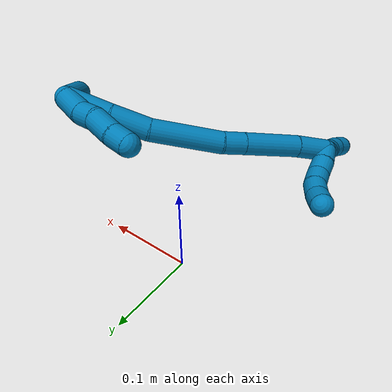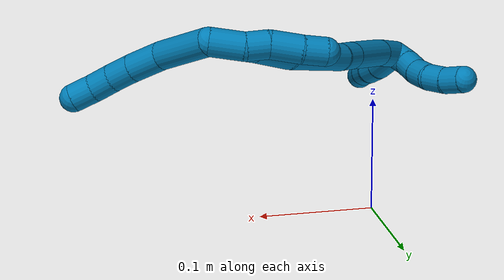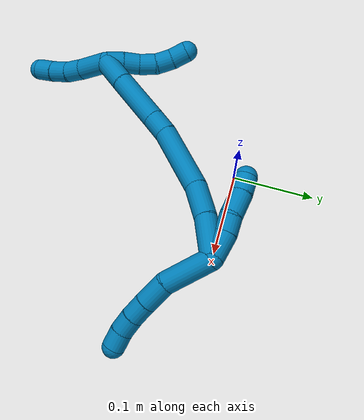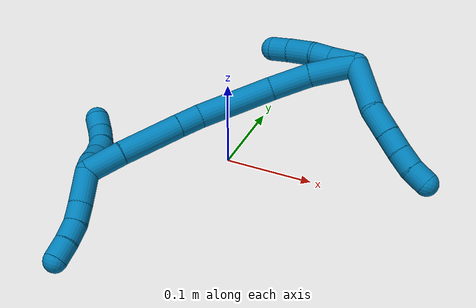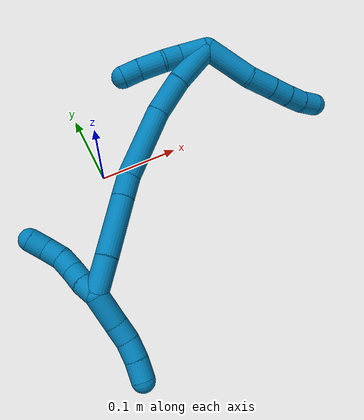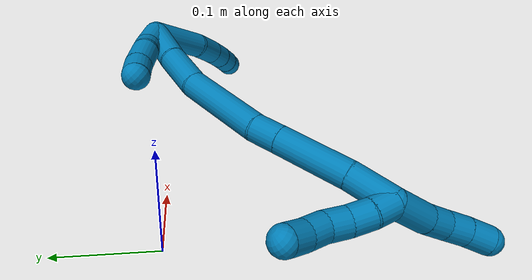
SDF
<sdf version="1.7">
 <world name="default">
  <model name="photoneo_s_sensor">
   <static>1</static>
   <pose>0 0 2 1.57079 1.57079 3.14159</pose>
   <link name="link">
    <inertial><mass>0.1</mass></inertial>
    <sensor name="sensor" type="depth">
     <update_rate>30</update_rate>
     <camera>
      <horizontal_fov>1.22</horizontal_fov>
      <image><width>1920</width><height>1200</height><format>B8G8R8</format></image>
      <clip><near>0.1</near><far>4</far></clip>
      <depth_camera><output>points</output></depth_camera>
     </camera>
     <plugin name="camera_plugin" filename="libgazebo_ros_depth_camera.so">
      <baseline>0.2</baseline>
      <alwaysOn>1</alwaysOn>
      <updateRate>0.0</updateRate>
      <cameraName>camera_ir</cameraName>
      <imageTopicName>/camera/color/image_raw</imageTopicName>
      <cameraInfoTopicName>/camera/color/camera_info</cameraInfoTopicName>
      <depthImageTopicName>/camera/depth/image_raw</depthImageTopicName>
      <depthImageCameraInfoTopicName>/camera/depth/camera_info</depthImageCameraInfoTopicName>
      <pointCloudTopicName>/camera/depth/points</pointCloudTopicName>
      <frameName>fr_optical</frameName>
      <pointCloudCutoff>0.1</pointCloudCutoff>
      <pointCloudCutoffMax>2.0</pointCloudCutoffMax>
      <distortionK1>0</distortionK1>
      <distortionK2>0</distortionK2>
      <distortionK3>0</distortionK3>
      <distortionT1>0</distortionT1>
      <distortionT2>0</distortionT2>
      <CxPrime>0</CxPrime>
      <Cx>0</Cx>
      <Cy>0</Cy>
      <focalLength>0</focalLength>
      <hackBaseline>0</hackBaseline>
     </plugin>
    </sensor>
   </link>
  </model>
  <model name="bin">
   <static>1</static>
   <link name="bottom">
    <collision name="collision-bottom">
     <pose>0 0 -0.01 0 -0 0</pose>
     <geometry><box><size>0.8 0.6 0.02</size></box></geometry>
     <surface>
      <friction><ode><mu>100</mu><mu2>100</mu2></ode></friction>
      <contact><collide_bitmask>65535</collide_bitmask></contact>
     </surface>
    </collision>
   </link>
   <link name="west_wall">
    <collision name="collision-west_wall">
     <pose>-0.41 0 0.1 0 -0 0</pose>
     <geometry><box><size>0.02 0.6 0.2</size></box></geometry>
     <surface>
      <friction><ode><mu>100</mu><mu2>100</mu2></ode></friction>
      <contact><collide_bitmask>65535</collide_bitmask></contact>
     </surface>
    </collision>
   </link>
   <link name="east_wall">
    <collision name="collision-east_wall">
     <pose>0.41 0 0.1 0 -0 0</pose>
     <geometry><box><size>0.02 0.6 0.2</size></box></geometry>
     <surface>
      <friction><ode><mu>100</mu><mu2>100</mu2></ode></friction>
      <contact><collide_bitmask>65535</collide_bitmask></contact>
     </surface>
    </collision>
   </link>
   <link name="south_wall">
    <collision name="collision-south_wall">
     <pose>0 -0.31 0.1 0 -0 0</pose>
     <geometry><box><size>0.8 0.02 0.2</size></box></geometry>
     <surface>
      <friction><ode><mu>100</mu><mu2>100</mu2></ode></friction>
      <contact><collide_bitmask>65535</collide_bitmask></contact>
     </surface>
    </collision>
   </link>
   <link name="north_wall">
    <collision name="collision-north_wall">
     <pose>0 0.31 0.1 0 -0 0</pose>
     <geometry><box><size>0.8 0.02 0.2</size></box></geometry>
     <surface>
      <friction><ode><mu>100</mu><mu2>100</mu2></ode></friction>
      <contact><collide_bitmask>65535</collide_bitmask></contact>
     </surface>
    </collision>
   </link>
  </model>
  <model name="9">
   <static>0</static>
   <link name="9">
    <collision name="collision-cylinder-e_1_2_8">
     <pose>0.013258 -0.012427 -0.021515 2.61781 0.49016 1.50157</pose>
     <geometry><cylinder><radius>0.0125</radius><length>0.056325</length></cylinder></geometry>
     <surface>
      <friction><ode><mu>1.16</mu><mu2>1.16</mu2><slip1>0</slip1><slip2>0</slip2></ode></friction>
      <contact><ode><kp>1e+06</kp><kd>1</kd><max_vel>0</max_vel><min_depth>0.001</min_depth></ode></contact>
     </surface>
    </collision>
    <visual name="visual-cylinder-e_1_2_8">
     <pose>0.013258 -0.012427 -0.021515 2.61781 0.49016 1.50157</pose>
     <geometry><cylinder><radius>0.0125</radius><length>0.056325</length></cylinder></geometry>
     <material><ambient>0 0.490196 0.709804 1</ambient></material>
    </visual>
    <collision name="collision-cylinder-e_2_8_9">
     <pose>0.037017 -0.029233 -0.053232 2.73619 0.7576 2.18829</pose>
     <geometry><cylinder><radius>0.0125</radius><length>0.030562</length></cylinder></geometry>
     <surface>
      <friction><ode><mu>1.16</mu><mu2>1.16</mu2><slip1>0</slip1><slip2>0</slip2></ode></friction>
      <contact><ode><kp>1e+06</kp><kd>1</kd><max_vel>0</max_vel><min_depth>0.001</min_depth></ode></contact>
     </surface>
    </collision>
    <visual name="visual-cylinder-e_2_8_9">
     <pose>0.037017 -0.029233 -0.053232 2.73619 0.7576 2.18829</pose>
     <geometry><cylinder><radius>0.0125</radius><length>0.030562</length></cylinder></geometry>
     <material><ambient>0 0.490196 0.709804 1</ambient></material>
    </visual>
    <collision name="collision-cylinder-e_3_9_10">
     <pose>0.055228 -0.036191 -0.070828 2.8059 0.777653 2.35726</pose>
     <geometry><cylinder><radius>0.0125</radius><length>0.02198</length></cylinder></geometry>
     <surface>
      <friction><ode><mu>1.16</mu><mu2>1.16</mu2><slip1>0</slip1><slip2>0</slip2></ode></friction>
      <contact><ode><kp>1e+06</kp><kd>1</kd><max_vel>0</max_vel><min_depth>0.001</min_depth></ode></contact>
     </surface>
    </collision>
    <visual name="visual-cylinder-e_3_9_10">
     <pose>0.055228 -0.036191 -0.070828 2.8059 0.777653 2.35726</pose>
     <geometry><cylinder><radius>0.0125</radius><length>0.02198</length></cylinder></geometry>
     <material><ambient>0 0.490196 0.709804 1</ambient></material>
    </visual>
    <collision name="collision-cylinder-e_4_10_11">
     <pose>0.070692 -0.040561 -0.084757 2.87417 0.852502 2.56561</pose>
     <geometry><cylinder><radius>0.0125</radius><length>0.020594</length></cylinder></geometry>
     <surface>
      <friction><ode><mu>1.16</mu><mu2>1.16</mu2><slip1>0</slip1><slip2>0</slip2></ode></friction>
      <contact><ode><kp>1e+06</kp><kd>1</kd><max_vel>0</max_vel><min_depth>0.001</min_depth></ode></contact>
     </surface>
    </collision>
    <visual name="visual-cylinder-e_4_10_11">
     <pose>0.070692 -0.040561 -0.084757 2.87417 0.852502 2.56561</pose>
     <geometry><cylinder><radius>0.0125</radius><length>0.020594</length></cylinder></geometry>
     <material><ambient>0 0.490196 0.709804 1</ambient></material>
    </visual>
    <collision name="collision-cylinder-e_5_11_6">
     <pose>0.087309 -0.043798 -0.096273 2.859 1.04149 2.65539</pose>
     <geometry><cylinder><radius>0.0125</radius><length>0.02054</length></cylinder></geometry>
     <surface>
      <friction><ode><mu>1.16</mu><mu2>1.16</mu2><slip1>0</slip1><slip2>0</slip2></ode></friction>
      <contact><ode><kp>1e+06</kp><kd>1</kd><max_vel>0</max_vel><min_depth>0.001</min_depth></ode></contact>
     </surface>
    </collision>
    <visual name="visual-cylinder-e_5_11_6">
     <pose>0.087309 -0.043798 -0.096273 2.859 1.04149 2.65539</pose>
     <geometry><cylinder><radius>0.0125</radius><length>0.02054</length></cylinder></geometry>
     <material><ambient>0 0.490196 0.709804 1</ambient></material>
    </visual>
    <collision name="collision-cylinder-e_1_2_12">
     <pose>-0.012859 0.008417 0.000618 -1.49746 -0.98999 0.929882</pose>
     <geometry><cylinder><radius>0.0125</radius><length>0.030762</length></cylinder></geometry>
     <surface>
      <friction><ode><mu>1.16</mu><mu2>1.16</mu2><slip1>0</slip1><slip2>0</slip2></ode></friction>
      <contact><ode><kp>1e+06</kp><kd>1</kd><max_vel>0</max_vel><min_depth>0.001</min_depth></ode></contact>
     </surface>
    </collision>
    <visual name="visual-cylinder-e_1_2_12">
     <pose>-0.012859 0.008417 0.000618 -1.49746 -0.98999 0.929882</pose>
     <geometry><cylinder><radius>0.0125</radius><length>0.030762</length></cylinder></geometry>
     <material><ambient>0 0.490196 0.709804 1</ambient></material>
    </visual>
    <collision name="collision-cylinder-e_2_12_13">
     <pose>-0.035441 0.019897 0.001748 -1.40549 -1.26161 1.10797</pose>
     <geometry><cylinder><radius>0.0125</radius><length>0.020415</length></cylinder></geometry>
     <surface>
      <friction><ode><mu>1.16</mu><mu2>1.16</mu2><slip1>0</slip1><slip2>0</slip2></ode></friction>
      <contact><ode><kp>1e+06</kp><kd>1</kd><max_vel>0</max_vel><min_depth>0.001</min_depth></ode></contact>
     </surface>
    </collision>
    <visual name="visual-cylinder-e_2_12_13">
     <pose>-0.035441 0.019897 0.001748 -1.40549 -1.26161 1.10797</pose>
     <geometry><cylinder><radius>0.0125</radius><length>0.020415</length></cylinder></geometry>
     <material><ambient>0 0.490196 0.709804 1</ambient></material>
    </visual>
    <collision name="collision-cylinder-e_3_13_14">
     <pose>-0.057207 0.030425 0.001791 -1.63335 -1.01506 1.0691</pose>
     <geometry><cylinder><radius>0.0125</radius><length>0.028351</length></cylinder></geometry>
     <surface>
      <friction><ode><mu>1.16</mu><mu2>1.16</mu2><slip1>0</slip1><slip2>0</slip2></ode></friction>
      <contact><ode><kp>1e+06</kp><kd>1</kd><max_vel>0</max_vel><min_depth>0.001</min_depth></ode></contact>
     </surface>
    </collision>
    <visual name="visual-cylinder-e_3_13_14">
     <pose>-0.057207 0.030425 0.001791 -1.63335 -1.01506 1.0691</pose>
     <geometry><cylinder><radius>0.0125</radius><length>0.028351</length></cylinder></geometry>
     <material><ambient>0 0.490196 0.709804 1</ambient></material>
    </visual>
    <collision name="collision-cylinder-e_4_14_5">
     <pose>-0.078476 0.042205 0.000321 -1.79908 -1.1231 1.33973</pose>
     <geometry><cylinder><radius>0.0125</radius><length>0.020472</length></cylinder></geometry>
     <surface>
      <friction><ode><mu>1.16</mu><mu2>1.16</mu2><slip1>0</slip1><slip2>0</slip2></ode></friction>
      <contact><ode><kp>1e+06</kp><kd>1</kd><max_vel>0</max_vel><min_depth>0.001</min_depth></ode></contact>
     </surface>
    </collision>
    <visual name="visual-cylinder-e_4_14_5">
     <pose>-0.078476 0.042205 0.000321 -1.79908 -1.1231 1.33973</pose>
     <geometry><cylinder><radius>0.0125</radius><length>0.020472</length></cylinder></geometry>
     <material><ambient>0 0.490196 0.709804 1</ambient></material>
    </visual>
    <collision name="collision-cylinder-e_1_2_15">
     <pose>-0.021289 0.005036 -0.01108 -2.71502 -1.05146 2.42705</pose>
     <geometry><cylinder><radius>0.0125</radius><length>0.049044</length></cylinder></geometry>
     <surface>
      <friction><ode><mu>1.16</mu><mu2>1.16</mu2><slip1>0</slip1><slip2>0</slip2></ode></friction>
      <contact><ode><kp>1e+06</kp><kd>1</kd><max_vel>0</max_vel><min_depth>0.001</min_depth></ode></contact>
     </surface>
    </collision>
    <visual name="visual-cylinder-e_1_2_15">
     <pose>-0.021289 0.005036 -0.01108 -2.71502 -1.05146 2.42705</pose>
     <geometry><cylinder><radius>0.0125</radius><length>0.049044</length></cylinder></geometry>
     <material><ambient>0 0.490196 0.709804 1</ambient></material>
    </visual>
    <collision name="collision-cylinder-e_2_15_16">
     <pose>-0.059734 0.013158 -0.034096 -2.88854 -0.947661 2.65528</pose>
     <geometry><cylinder><radius>0.0125</radius><length>0.042253</length></cylinder></geometry>
     <surface>
      <friction><ode><mu>1.16</mu><mu2>1.16</mu2><slip1>0</slip1><slip2>0</slip2></ode></friction>
      <contact><ode><kp>1e+06</kp><kd>1</kd><max_vel>0</max_vel><min_depth>0.001</min_depth></ode></contact>
     </surface>
    </collision>
    <visual name="visual-cylinder-e_2_15_16">
     <pose>-0.059734 0.013158 -0.034096 -2.88854 -0.947661 2.65528</pose>
     <geometry><cylinder><radius>0.0125</radius><length>0.042253</length></cylinder></geometry>
     <material><ambient>0 0.490196 0.709804 1</ambient></material>
    </visual>
    <collision name="collision-cylinder-e_3_16_17">
     <pose>-0.108198 0.014041 -0.070571 3.05203 -0.90409 -2.95755</pose>
     <geometry><cylinder><radius>0.0125</radius><length>0.079679</length></cylinder></geometry>
     <surface>
      <friction><ode><mu>1.16</mu><mu2>1.16</mu2><slip1>0</slip1><slip2>0</slip2></ode></friction>
      <contact><ode><kp>1e+06</kp><kd>1</kd><max_vel>0</max_vel><min_depth>0.001</min_depth></ode></contact>
     </surface>
    </collision>
    <visual name="visual-cylinder-e_3_16_17">
     <pose>-0.108198 0.014041 -0.070571 3.05203 -0.90409 -2.95755</pose>
     <geometry><cylinder><radius>0.0125</radius><length>0.079679</length></cylinder></geometry>
     <material><ambient>0 0.490196 0.709804 1</ambient></material>
    </visual>
    <collision name="collision-cylinder-e_4_17_18">
     <pose>-0.14847 0.009297 -0.103328 2.84181 -0.805947 -2.46066</pose>
     <geometry><cylinder><radius>0.0125</radius><length>0.024847</length></cylinder></geometry>
     <surface>
      <friction><ode><mu>1.16</mu><mu2>1.16</mu2><slip1>0</slip1><slip2>0</slip2></ode></friction>
      <contact><ode><kp>1e+06</kp><kd>1</kd><max_vel>0</max_vel><min_depth>0.001</min_depth></ode></contact>
     </surface>
    </collision>
    <visual name="visual-cylinder-e_4_17_18">
     <pose>-0.14847 0.009297 -0.103328 2.84181 -0.805947 -2.46066</pose>
     <geometry><cylinder><radius>0.0125</radius><length>0.024847</length></cylinder></geometry>
     <material><ambient>0 0.490196 0.709804 1</ambient></material>
    </visual>
    <collision name="collision-cylinder-e_5_18_19">
     <pose>-0.180578 0.000248 -0.133495 2.8533 -0.79085 -2.47227</pose>
     <geometry><cylinder><radius>0.0125</radius><length>0.065109</length></cylinder></geometry>
     <surface>
      <friction><ode><mu>1.16</mu><mu2>1.16</mu2><slip1>0</slip1><slip2>0</slip2></ode></friction>
      <contact><ode><kp>1e+06</kp><kd>1</kd><max_vel>0</max_vel><min_depth>0.001</min_depth></ode></contact>
     </surface>
    </collision>
    <visual name="visual-cylinder-e_5_18_19">
     <pose>-0.180578 0.000248 -0.133495 2.8533 -0.79085 -2.47227</pose>
     <geometry><cylinder><radius>0.0125</radius><length>0.065109</length></cylinder></geometry>
     <material><ambient>0 0.490196 0.709804 1</ambient></material>
    </visual>
    <collision name="collision-cylinder-e_6_19_1">
     <pose>-0.217329 -0.008797 -0.169228 2.95961 -0.770582 -2.69901</pose>
     <geometry><cylinder><radius>0.0125</radius><length>0.039067</length></cylinder></geometry>
     <surface>
      <friction><ode><mu>1.16</mu><mu2>1.16</mu2><slip1>0</slip1><slip2>0</slip2></ode></friction>
      <contact><ode><kp>1e+06</kp><kd>1</kd><max_vel>0</max_vel><min_depth>0.001</min_depth></ode></contact>
     </surface>
    </collision>
    <visual name="visual-cylinder-e_6_19_1">
     <pose>-0.217329 -0.008797 -0.169228 2.95961 -0.770582 -2.69901</pose>
     <geometry><cylinder><radius>0.0125</radius><length>0.039067</length></cylinder></geometry>
     <material><ambient>0 0.490196 0.709804 1</ambient></material>
    </visual>
    <collision name="collision-cylinder-e_1_1_20">
     <pose>-0.228664 -0.016177 -0.200246 2.86762 0.126184 0.859461</pose>
     <geometry><cylinder><radius>0.0125</radius><length>0.036091</length></cylinder></geometry>
     <surface>
      <friction><ode><mu>1.16</mu><mu2>1.16</mu2><slip1>0</slip1><slip2>0</slip2></ode></friction>
      <contact><ode><kp>1e+06</kp><kd>1</kd><max_vel>0</max_vel><min_depth>0.001</min_depth></ode></contact>
     </surface>
    </collision>
    <visual name="visual-cylinder-e_1_1_20">
     <pose>-0.228664 -0.016177 -0.200246 2.86762 0.126184 0.859461</pose>
     <geometry><cylinder><radius>0.0125</radius><length>0.036091</length></cylinder></geometry>
     <material><ambient>0 0.490196 0.709804 1</ambient></material>
    </visual>
    <collision name="collision-cylinder-e_2_20_21">
     <pose>-0.225376 -0.02496 -0.22706 2.75143 0.097873 0.485923</pose>
     <geometry><cylinder><radius>0.0125</radius><length>0.020815</length></cylinder></geometry>
     <surface>
      <friction><ode><mu>1.16</mu><mu2>1.16</mu2><slip1>0</slip1><slip2>0</slip2></ode></friction>
      <contact><ode><kp>1e+06</kp><kd>1</kd><max_vel>0</max_vel><min_depth>0.001</min_depth></ode></contact>
     </surface>
    </collision>
    <visual name="visual-cylinder-e_2_20_21">
     <pose>-0.225376 -0.02496 -0.22706 2.75143 0.097873 0.485923</pose>
     <geometry><cylinder><radius>0.0125</radius><length>0.020815</length></cylinder></geometry>
     <material><ambient>0 0.490196 0.709804 1</ambient></material>
    </visual>
    <collision name="collision-cylinder-e_3_21_22">
     <pose>-0.225383 -0.033276 -0.246197 2.71226 -0.097126 -0.438664</pose>
     <geometry><cylinder><radius>0.0125</radius><length>0.021123</length></cylinder></geometry>
     <surface>
      <friction><ode><mu>1.16</mu><mu2>1.16</mu2><slip1>0</slip1><slip2>0</slip2></ode></friction>
      <contact><ode><kp>1e+06</kp><kd>1</kd><max_vel>0</max_vel><min_depth>0.001</min_depth></ode></contact>
     </surface>
    </collision>
    <visual name="visual-cylinder-e_3_21_22">
     <pose>-0.225383 -0.033276 -0.246197 2.71226 -0.097126 -0.438664</pose>
     <geometry><cylinder><radius>0.0125</radius><length>0.021123</length></cylinder></geometry>
     <material><ambient>0 0.490196 0.709804 1</ambient></material>
    </visual>
    <collision name="collision-cylinder-e_4_22_4">
     <pose>-0.228543 -0.041528 -0.265809 2.77353 -0.195677 -0.970509</pose>
     <geometry><cylinder><radius>0.0125</radius><length>0.021971</length></cylinder></geometry>
     <surface>
      <friction><ode><mu>1.16</mu><mu2>1.16</mu2><slip1>0</slip1><slip2>0</slip2></ode></friction>
      <contact><ode><kp>1e+06</kp><kd>1</kd><max_vel>0</max_vel><min_depth>0.001</min_depth></ode></contact>
     </surface>
    </collision>
    <visual name="visual-cylinder-e_4_22_4">
     <pose>-0.228543 -0.041528 -0.265809 2.77353 -0.195677 -0.970509</pose>
     <geometry><cylinder><radius>0.0125</radius><length>0.021971</length></cylinder></geometry>
     <material><ambient>0 0.490196 0.709804 1</ambient></material>
    </visual>
    <collision name="collision-cylinder-e_1_1_23">
     <pose>-0.231784 -0.002568 -0.178276 -1.07547 -0.084962 0.050687</pose>
     <geometry><cylinder><radius>0.0125</radius><length>0.02</length></cylinder></geometry>
     <surface>
      <friction><ode><mu>1.16</mu><mu2>1.16</mu2><slip1>0</slip1><slip2>0</slip2></ode></friction>
      <contact><ode><kp>1e+06</kp><kd>1</kd><max_vel>0</max_vel><min_depth>0.001</min_depth></ode></contact>
     </surface>
    </collision>
    <visual name="visual-cylinder-e_1_1_23">
     <pose>-0.231784 -0.002568 -0.178276 -1.07547 -0.084962 0.050687</pose>
     <geometry><cylinder><radius>0.0125</radius><length>0.02</length></cylinder></geometry>
     <material><ambient>0 0.490196 0.709804 1</ambient></material>
    </visual>
    <collision name="collision-cylinder-e_2_23_24">
     <pose>-0.231972 0.014699 -0.168315 -1.01961 0.066017 -0.036919</pose>
     <geometry><cylinder><radius>0.0125</radius><length>0.02</length></cylinder></geometry>
     <surface>
      <friction><ode><mu>1.16</mu><mu2>1.16</mu2><slip1>0</slip1><slip2>0</slip2></ode></friction>
      <contact><ode><kp>1e+06</kp><kd>1</kd><max_vel>0</max_vel><min_depth>0.001</min_depth></ode></contact>
     </surface>
    </collision>
    <visual name="visual-cylinder-e_2_23_24">
     <pose>-0.231972 0.014699 -0.168315 -1.01961 0.066017 -0.036919</pose>
     <geometry><cylinder><radius>0.0125</radius><length>0.02</length></cylinder></geometry>
     <material><ambient>0 0.490196 0.709804 1</ambient></material>
    </visual>
    <collision name="collision-cylinder-e_3_24_25">
     <pose>-0.231807 0.030767 -0.156571 -0.859745 -0.049395 0.02265</pose>
     <geometry><cylinder><radius>0.0125</radius><length>0.02</length></cylinder></geometry>
     <surface>
      <friction><ode><mu>1.16</mu><mu2>1.16</mu2><slip1>0</slip1><slip2>0</slip2></ode></friction>
      <contact><ode><kp>1e+06</kp><kd>1</kd><max_vel>0</max_vel><min_depth>0.001</min_depth></ode></contact>
     </surface>
    </collision>
    <visual name="visual-cylinder-e_3_24_25">
     <pose>-0.231807 0.030767 -0.156571 -0.859745 -0.049395 0.02265</pose>
     <geometry><cylinder><radius>0.0125</radius><length>0.02</length></cylinder></geometry>
     <material><ambient>0 0.490196 0.709804 1</ambient></material>
    </visual>
    <collision name="collision-cylinder-e_4_25_26">
     <pose>-0.235733 0.045521 -0.144004 -0.871166 -0.350384 0.164385</pose>
     <geometry><cylinder><radius>0.0125</radius><length>0.02</length></cylinder></geometry>
     <surface>
      <friction><ode><mu>1.16</mu><mu2>1.16</mu2><slip1>0</slip1><slip2>0</slip2></ode></friction>
      <contact><ode><kp>1e+06</kp><kd>1</kd><max_vel>0</max_vel><min_depth>0.001</min_depth></ode></contact>
     </surface>
    </collision>
    <visual name="visual-cylinder-e_4_25_26">
     <pose>-0.235733 0.045521 -0.144004 -0.871166 -0.350384 0.164385</pose>
     <geometry><cylinder><radius>0.0125</radius><length>0.02</length></cylinder></geometry>
     <material><ambient>0 0.490196 0.709804 1</ambient></material>
    </visual>
    <collision name="collision-cylinder-e_5_26_3">
     <pose>-0.243686 0.058372 -0.131067 -0.688236 -0.469096 0.170849</pose>
     <geometry><cylinder><radius>0.0125</radius><length>0.02</length></cylinder></geometry>
     <surface>
      <friction><ode><mu>1.16</mu><mu2>1.16</mu2><slip1>0</slip1><slip2>0</slip2></ode></friction>
      <contact><ode><kp>1e+06</kp><kd>1</kd><max_vel>0</max_vel><min_depth>0.001</min_depth></ode></contact>
     </surface>
    </collision>
    <visual name="visual-cylinder-e_5_26_3">
     <pose>-0.243686 0.058372 -0.131067 -0.688236 -0.469096 0.170849</pose>
     <geometry><cylinder><radius>0.0125</radius><length>0.02</length></cylinder></geometry>
     <material><ambient>0 0.490196 0.709804 1</ambient></material>
    </visual>
    <collision name="collision-sphere-3">
     <pose>-0.248207 0.064038 -0.124178 0 -0 0</pose>
     <geometry><sphere><radius>0.0125</radius></sphere></geometry>
     <surface>
      <friction><ode><mu>1.16</mu><mu2>1.16</mu2><slip1>0</slip1><slip2>0</slip2></ode></friction>
      <contact><ode><kp>1e+06</kp><kd>1</kd><max_vel>0</max_vel><min_depth>0.001</min_depth></ode></contact>
     </surface>
    </collision>
    <visual name="visual-sphere-3">
     <pose>-0.248207 0.064038 -0.124178 0 -0 0</pose>
     <geometry><sphere><radius>0.0125</radius></sphere></geometry>
     <material><ambient>0 0.490196 0.709804 1</ambient></material>
    </visual>
    <collision name="collision-sphere-26">
     <pose>-0.239165 0.052707 -0.137956 0 -0 0</pose>
     <geometry><sphere><radius>0.0125</radius></sphere></geometry>
     <surface>
      <friction><ode><mu>1.16</mu><mu2>1.16</mu2><slip1>0</slip1><slip2>0</slip2></ode></friction>
      <contact><ode><kp>1e+06</kp><kd>1</kd><max_vel>0</max_vel><min_depth>0.001</min_depth></ode></contact>
     </surface>
    </collision>
    <visual name="visual-sphere-26">
     <pose>-0.239165 0.052707 -0.137956 0 -0 0</pose>
     <geometry><sphere><radius>0.0125</radius></sphere></geometry>
     <material><ambient>0 0.490196 0.709804 1</ambient></material>
    </visual>
    <collision name="collision-sphere-25">
     <pose>-0.2323 0.038335 -0.150052 0 -0 0</pose>
     <geometry><sphere><radius>0.0125</radius></sphere></geometry>
     <surface>
      <friction><ode><mu>1.16</mu><mu2>1.16</mu2><slip1>0</slip1><slip2>0</slip2></ode></friction>
      <contact><ode><kp>1e+06</kp><kd>1</kd><max_vel>0</max_vel><min_depth>0.001</min_depth></ode></contact>
     </surface>
    </collision>
    <visual name="visual-sphere-25">
     <pose>-0.2323 0.038335 -0.150052 0 -0 0</pose>
     <geometry><sphere><radius>0.0125</radius></sphere></geometry>
     <material><ambient>0 0.490196 0.709804 1</ambient></material>
    </visual>
    <collision name="collision-sphere-24">
     <pose>-0.231313 0.0232 -0.163089 0 -0 0</pose>
     <geometry><sphere><radius>0.0125</radius></sphere></geometry>
     <surface>
      <friction><ode><mu>1.16</mu><mu2>1.16</mu2><slip1>0</slip1><slip2>0</slip2></ode></friction>
      <contact><ode><kp>1e+06</kp><kd>1</kd><max_vel>0</max_vel><min_depth>0.001</min_depth></ode></contact>
     </surface>
    </collision>
    <visual name="visual-sphere-24">
     <pose>-0.231313 0.0232 -0.163089 0 -0 0</pose>
     <geometry><sphere><radius>0.0125</radius></sphere></geometry>
     <material><ambient>0 0.490196 0.709804 1</ambient></material>
    </visual>
    <collision name="collision-sphere-23">
     <pose>-0.232632 0.006199 -0.17354 0 -0 0</pose>
     <geometry><sphere><radius>0.0125</radius></sphere></geometry>
     <surface>
      <friction><ode><mu>1.16</mu><mu2>1.16</mu2><slip1>0</slip1><slip2>0</slip2></ode></friction>
      <contact><ode><kp>1e+06</kp><kd>1</kd><max_vel>0</max_vel><min_depth>0.001</min_depth></ode></contact>
     </surface>
    </collision>
    <visual name="visual-sphere-23">
     <pose>-0.232632 0.006199 -0.17354 0 -0 0</pose>
     <geometry><sphere><radius>0.0125</radius></sphere></geometry>
     <material><ambient>0 0.490196 0.709804 1</ambient></material>
    </visual>
    <collision name="collision-sphere-4">
     <pose>-0.230679 -0.045406 -0.275863 0 -0 0</pose>
     <geometry><sphere><radius>0.0125</radius></sphere></geometry>
     <surface>
      <friction><ode><mu>1.16</mu><mu2>1.16</mu2><slip1>0</slip1><slip2>0</slip2></ode></friction>
      <contact><ode><kp>1e+06</kp><kd>1</kd><max_vel>0</max_vel><min_depth>0.001</min_depth></ode></contact>
     </surface>
    </collision>
    <visual name="visual-sphere-4">
     <pose>-0.230679 -0.045406 -0.275863 0 -0 0</pose>
     <geometry><sphere><radius>0.0125</radius></sphere></geometry>
     <material><ambient>0 0.490196 0.709804 1</ambient></material>
    </visual>
    <collision name="collision-sphere-22">
     <pose>-0.226407 -0.037651 -0.255755 0 -0 0</pose>
     <geometry><sphere><radius>0.0125</radius></sphere></geometry>
     <surface>
      <friction><ode><mu>1.16</mu><mu2>1.16</mu2><slip1>0</slip1><slip2>0</slip2></ode></friction>
      <contact><ode><kp>1e+06</kp><kd>1</kd><max_vel>0</max_vel><min_depth>0.001</min_depth></ode></contact>
     </surface>
    </collision>
    <visual name="visual-sphere-22">
     <pose>-0.226407 -0.037651 -0.255755 0 -0 0</pose>
     <geometry><sphere><radius>0.0125</radius></sphere></geometry>
     <material><ambient>0 0.490196 0.709804 1</ambient></material>
    </visual>
    <collision name="collision-sphere-21">
     <pose>-0.224359 -0.0289 -0.236639 0 -0 0</pose>
     <geometry><sphere><radius>0.0125</radius></sphere></geometry>
     <surface>
      <friction><ode><mu>1.16</mu><mu2>1.16</mu2><slip1>0</slip1><slip2>0</slip2></ode></friction>
      <contact><ode><kp>1e+06</kp><kd>1</kd><max_vel>0</max_vel><min_depth>0.001</min_depth></ode></contact>
     </surface>
    </collision>
    <visual name="visual-sphere-21">
     <pose>-0.224359 -0.0289 -0.236639 0 -0 0</pose>
     <geometry><sphere><radius>0.0125</radius></sphere></geometry>
     <material><ambient>0 0.490196 0.709804 1</ambient></material>
    </visual>
    <collision name="collision-sphere-20">
     <pose>-0.226393 -0.021021 -0.217481 0 -0 0</pose>
     <geometry><sphere><radius>0.0125</radius></sphere></geometry>
     <surface>
      <friction><ode><mu>1.16</mu><mu2>1.16</mu2><slip1>0</slip1><slip2>0</slip2></ode></friction>
      <contact><ode><kp>1e+06</kp><kd>1</kd><max_vel>0</max_vel><min_depth>0.001</min_depth></ode></contact>
     </surface>
    </collision>
    <visual name="visual-sphere-20">
     <pose>-0.226393 -0.021021 -0.217481 0 -0 0</pose>
     <geometry><sphere><radius>0.0125</radius></sphere></geometry>
     <material><ambient>0 0.490196 0.709804 1</ambient></material>
    </visual>
    <collision name="collision-sphere-6">
     <pose>0.096173 -0.045244 -0.101253 0 -0 0</pose>
     <geometry><sphere><radius>0.0125</radius></sphere></geometry>
     <surface>
      <friction><ode><mu>1.16</mu><mu2>1.16</mu2><slip1>0</slip1><slip2>0</slip2></ode></friction>
      <contact><ode><kp>1e+06</kp><kd>1</kd><max_vel>0</max_vel><min_depth>0.001</min_depth></ode></contact>
     </surface>
    </collision>
    <visual name="visual-sphere-6">
     <pose>0.096173 -0.045244 -0.101253 0 -0 0</pose>
     <geometry><sphere><radius>0.0125</radius></sphere></geometry>
     <material><ambient>0 0.490196 0.709804 1</ambient></material>
    </visual>
    <collision name="collision-sphere-11">
     <pose>0.078444 -0.042352 -0.091293 0 -0 0</pose>
     <geometry><sphere><radius>0.0125</radius></sphere></geometry>
     <surface>
      <friction><ode><mu>1.16</mu><mu2>1.16</mu2><slip1>0</slip1><slip2>0</slip2></ode></friction>
      <contact><ode><kp>1e+06</kp><kd>1</kd><max_vel>0</max_vel><min_depth>0.001</min_depth></ode></contact>
     </surface>
    </collision>
    <visual name="visual-sphere-11">
     <pose>0.078444 -0.042352 -0.091293 0 -0 0</pose>
     <geometry><sphere><radius>0.0125</radius></sphere></geometry>
     <material><ambient>0 0.490196 0.709804 1</ambient></material>
    </visual>
    <collision name="collision-sphere-10">
     <pose>0.062939 -0.038771 -0.078222 0 -0 0</pose>
     <geometry><sphere><radius>0.0125</radius></sphere></geometry>
     <surface>
      <friction><ode><mu>1.16</mu><mu2>1.16</mu2><slip1>0</slip1><slip2>0</slip2></ode></friction>
      <contact><ode><kp>1e+06</kp><kd>1</kd><max_vel>0</max_vel><min_depth>0.001</min_depth></ode></contact>
     </surface>
    </collision>
    <visual name="visual-sphere-10">
     <pose>0.062939 -0.038771 -0.078222 0 -0 0</pose>
     <geometry><sphere><radius>0.0125</radius></sphere></geometry>
     <material><ambient>0 0.490196 0.709804 1</ambient></material>
    </visual>
    <collision name="collision-sphere-9">
     <pose>0.047517 -0.033611 -0.063434 0 -0 0</pose>
     <geometry><sphere><radius>0.0125</radius></sphere></geometry>
     <surface>
      <friction><ode><mu>1.16</mu><mu2>1.16</mu2><slip1>0</slip1><slip2>0</slip2></ode></friction>
      <contact><ode><kp>1e+06</kp><kd>1</kd><max_vel>0</max_vel><min_depth>0.001</min_depth></ode></contact>
     </surface>
    </collision>
    <visual name="visual-sphere-9">
     <pose>0.047517 -0.033611 -0.063434 0 -0 0</pose>
     <geometry><sphere><radius>0.0125</radius></sphere></geometry>
     <material><ambient>0 0.490196 0.709804 1</ambient></material>
    </visual>
    <collision name="collision-sphere-2">
     <geometry><sphere><radius>0.0125</radius></sphere></geometry>
     <surface>
      <friction><ode><mu>1.16</mu><mu2>1.16</mu2><slip1>0</slip1><slip2>0</slip2></ode></friction>
      <contact><ode><kp>1e+06</kp><kd>1</kd><max_vel>0</max_vel><min_depth>0.001</min_depth></ode></contact>
     </surface>
    </collision>
    <visual name="visual-sphere-2">
     <geometry><sphere><radius>0.0125</radius></sphere></geometry>
     <material><ambient>0 0.490196 0.709804 1</ambient></material>
    </visual>
    <collision name="collision-sphere-19">
     <pose>-0.203723 -0.006261 -0.155444 0 -0 0</pose>
     <geometry><sphere><radius>0.0125</radius></sphere></geometry>
     <surface>
      <friction><ode><mu>1.16</mu><mu2>1.16</mu2><slip1>0</slip1><slip2>0</slip2></ode></friction>
      <contact><ode><kp>1e+06</kp><kd>1</kd><max_vel>0</max_vel><min_depth>0.001</min_depth></ode></contact>
     </surface>
    </collision>
    <visual name="visual-sphere-19">
     <pose>-0.203723 -0.006261 -0.155444 0 -0 0</pose>
     <geometry><sphere><radius>0.0125</radius></sphere></geometry>
     <material><ambient>0 0.490196 0.709804 1</ambient></material>
    </visual>
    <collision name="collision-sphere-8">
     <pose>0.026516 -0.024855 -0.043031 0 -0 0</pose>
     <geometry><sphere><radius>0.0125</radius></sphere></geometry>
     <surface>
      <friction><ode><mu>1.16</mu><mu2>1.16</mu2><slip1>0</slip1><slip2>0</slip2></ode></friction>
      <contact><ode><kp>1e+06</kp><kd>1</kd><max_vel>0</max_vel><min_depth>0.001</min_depth></ode></contact>
     </surface>
    </collision>
    <visual name="visual-sphere-8">
     <pose>0.026516 -0.024855 -0.043031 0 -0 0</pose>
     <geometry><sphere><radius>0.0125</radius></sphere></geometry>
     <material><ambient>0 0.490196 0.709804 1</ambient></material>
    </visual>
    <collision name="collision-sphere-12">
     <pose>-0.025718 0.016834 0.001237 0 -0 0</pose>
     <geometry><sphere><radius>0.0125</radius></sphere></geometry>
     <surface>
      <friction><ode><mu>1.16</mu><mu2>1.16</mu2><slip1>0</slip1><slip2>0</slip2></ode></friction>
      <contact><ode><kp>1e+06</kp><kd>1</kd><max_vel>0</max_vel><min_depth>0.001</min_depth></ode></contact>
     </surface>
    </collision>
    <visual name="visual-sphere-12">
     <pose>-0.025718 0.016834 0.001237 0 -0 0</pose>
     <geometry><sphere><radius>0.0125</radius></sphere></geometry>
     <material><ambient>0 0.490196 0.709804 1</ambient></material>
    </visual>
    <collision name="collision-sphere-13">
     <pose>-0.045164 0.022961 0.002259 0 -0 0</pose>
     <geometry><sphere><radius>0.0125</radius></sphere></geometry>
     <surface>
      <friction><ode><mu>1.16</mu><mu2>1.16</mu2><slip1>0</slip1><slip2>0</slip2></ode></friction>
      <contact><ode><kp>1e+06</kp><kd>1</kd><max_vel>0</max_vel><min_depth>0.001</min_depth></ode></contact>
     </surface>
    </collision>
    <visual name="visual-sphere-13">
     <pose>-0.045164 0.022961 0.002259 0 -0 0</pose>
     <geometry><sphere><radius>0.0125</radius></sphere></geometry>
     <material><ambient>0 0.490196 0.709804 1</ambient></material>
    </visual>
    <collision name="collision-sphere-14">
     <pose>-0.069249 0.037889 0.001324 0 -0 0</pose>
     <geometry><sphere><radius>0.0125</radius></sphere></geometry>
     <surface>
      <friction><ode><mu>1.16</mu><mu2>1.16</mu2><slip1>0</slip1><slip2>0</slip2></ode></friction>
      <contact><ode><kp>1e+06</kp><kd>1</kd><max_vel>0</max_vel><min_depth>0.001</min_depth></ode></contact>
     </surface>
    </collision>
    <visual name="visual-sphere-14">
     <pose>-0.069249 0.037889 0.001324 0 -0 0</pose>
     <geometry><sphere><radius>0.0125</radius></sphere></geometry>
     <material><ambient>0 0.490196 0.709804 1</ambient></material>
    </visual>
    <collision name="collision-sphere-5">
     <pose>-0.087704 0.046521 -0.000682 0 -0 0</pose>
     <geometry><sphere><radius>0.0125</radius></sphere></geometry>
     <surface>
      <friction><ode><mu>1.16</mu><mu2>1.16</mu2><slip1>0</slip1><slip2>0</slip2></ode></friction>
      <contact><ode><kp>1e+06</kp><kd>1</kd><max_vel>0</max_vel><min_depth>0.001</min_depth></ode></contact>
     </surface>
    </collision>
    <visual name="visual-sphere-5">
     <pose>-0.087704 0.046521 -0.000682 0 -0 0</pose>
     <geometry><sphere><radius>0.0125</radius></sphere></geometry>
     <material><ambient>0 0.490196 0.709804 1</ambient></material>
    </visual>
    <collision name="collision-sphere-15">
     <pose>-0.042578 0.010071 -0.02216 0 -0 0</pose>
     <geometry><sphere><radius>0.0125</radius></sphere></geometry>
     <surface>
      <friction><ode><mu>1.16</mu><mu2>1.16</mu2><slip1>0</slip1><slip2>0</slip2></ode></friction>
      <contact><ode><kp>1e+06</kp><kd>1</kd><max_vel>0</max_vel><min_depth>0.001</min_depth></ode></contact>
     </surface>
    </collision>
    <visual name="visual-sphere-15">
     <pose>-0.042578 0.010071 -0.02216 0 -0 0</pose>
     <geometry><sphere><radius>0.0125</radius></sphere></geometry>
     <material><ambient>0 0.490196 0.709804 1</ambient></material>
    </visual>
    <collision name="collision-sphere-16">
     <pose>-0.07689 0.016245 -0.046033 0 -0 0</pose>
     <geometry><sphere><radius>0.0125</radius></sphere></geometry>
     <surface>
      <friction><ode><mu>1.16</mu><mu2>1.16</mu2><slip1>0</slip1><slip2>0</slip2></ode></friction>
      <contact><ode><kp>1e+06</kp><kd>1</kd><max_vel>0</max_vel><min_depth>0.001</min_depth></ode></contact>
     </surface>
    </collision>
    <visual name="visual-sphere-16">
     <pose>-0.07689 0.016245 -0.046033 0 -0 0</pose>
     <geometry><sphere><radius>0.0125</radius></sphere></geometry>
     <material><ambient>0 0.490196 0.709804 1</ambient></material>
    </visual>
    <collision name="collision-sphere-17">
     <pose>-0.139506 0.011838 -0.095109 0 -0 0</pose>
     <geometry><sphere><radius>0.0125</radius></sphere></geometry>
     <surface>
      <friction><ode><mu>1.16</mu><mu2>1.16</mu2><slip1>0</slip1><slip2>0</slip2></ode></friction>
      <contact><ode><kp>1e+06</kp><kd>1</kd><max_vel>0</max_vel><min_depth>0.001</min_depth></ode></contact>
     </surface>
    </collision>
    <visual name="visual-sphere-17">
     <pose>-0.139506 0.011838 -0.095109 0 -0 0</pose>
     <geometry><sphere><radius>0.0125</radius></sphere></geometry>
     <material><ambient>0 0.490196 0.709804 1</ambient></material>
    </visual>
    <collision name="collision-sphere-18">
     <pose>-0.157433 0.006757 -0.111546 0 -0 0</pose>
     <geometry><sphere><radius>0.0125</radius></sphere></geometry>
     <surface>
      <friction><ode><mu>1.16</mu><mu2>1.16</mu2><slip1>0</slip1><slip2>0</slip2></ode></friction>
      <contact><ode><kp>1e+06</kp><kd>1</kd><max_vel>0</max_vel><min_depth>0.001</min_depth></ode></contact>
     </surface>
    </collision>
    <visual name="visual-sphere-18">
     <pose>-0.157433 0.006757 -0.111546 0 -0 0</pose>
     <geometry><sphere><radius>0.0125</radius></sphere></geometry>
     <material><ambient>0 0.490196 0.709804 1</ambient></material>
    </visual>
    <collision name="collision-sphere-1">
     <pose>-0.230935 -0.011334 -0.183012 0 -0 0</pose>
     <geometry><sphere><radius>0.0125</radius></sphere></geometry>
     <surface>
      <friction><ode><mu>1.16</mu><mu2>1.16</mu2><slip1>0</slip1><slip2>0</slip2></ode></friction>
      <contact><ode><kp>1e+06</kp><kd>1</kd><max_vel>0</max_vel><min_depth>0.001</min_depth></ode></contact>
     </surface>
    </collision>
    <visual name="visual-sphere-1">
     <pose>-0.230935 -0.011334 -0.183012 0 -0 0</pose>
     <geometry><sphere><radius>0.0125</radius></sphere></geometry>
     <material><ambient>0 0.490196 0.709804 1</ambient></material>
    </visual>
    <inertial>
     <pose>-0.107144 0.000414 -0.096057 0 -0 0</pose>
     <mass>0.75</mass>
     <inertia>
      <ixx>-4.8e-05</ixx>
      <ixy>0</ixy>
      <ixz>0</ixz>
      <iyy>0.000124</iyy>
      <iyz>0</iyz>
      <izz>5.5e-05</izz>
     </inertia>
    </inertial>
   </link>
   <pose>0.144115 0.003009 0.161779 -0.71442 0.215238 0.232009</pose>
  </model>
 </world>
</sdf>
